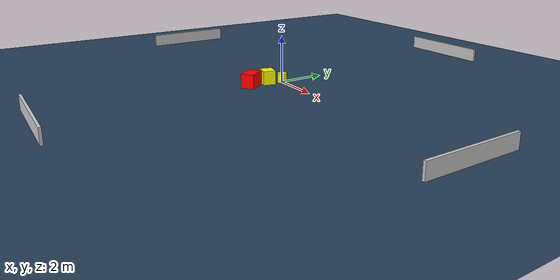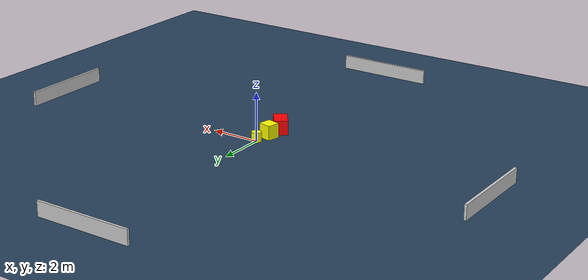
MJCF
<?xml version="1.0" ?>
<mujoco model="generated_environment">
  <option timestep="0.01" integrator="RK4" cone="elliptic"/>
  <default>
    <geom density="1"/>
  </default>
  <asset>
    <texture builtin="gradient" height="3072" name="skybox" rgb1="0.3 0.5 0.7" rgb2="0 0 0" type="skybox" width="512"/>
    <texture builtin="checker" height="300" name="groundplane" rgb1="0.2 0.3 0.4" rgb2="0.1 0.2 0.3" type="2d" width="300"/>
    <material name="groundplane" reflectance="0.2" texrepeat="5 5" texture="groundplane"/>
  </asset>
  <worldbody>
    <light dir="0 0 -1" directional="true" pos="0 0 1.5"/>
    <geom condim="3" friction="0.5 0.005 0.001" material="groundplane" name="floor" pos="0 0 0" size="0 0 0.05" type="plane"/>
    <body name="walls">
      <geom name="wall_1" condim="4" pos="-10.0 0.0 0.3" rgba="0.800000011920929 0.800000011920929 0.800000011920929 1.0" size="0.05 2.0 0.3" type="box"/>
      <geom name="wall_2" condim="4" pos="10.0 0.0 0.3" rgba="0.800000011920929 0.800000011920929 0.800000011920929 1.0" size="0.05 2.0 0.3" type="box"/>
      <geom name="wall_3" condim="4" pos="0.0 -10.0 0.3" rgba="0.800000011920929 0.800000011920929 0.800000011920929 1.0" size="2.0 0.05 0.3" type="box"/>
      <geom name="wall_4" condim="4" pos="0.0 10.0 0.3" rgba="0.800000011920929 0.800000011920929 0.800000011920929 1.0" size="2.0 0.05 0.3" type="box"/>
    </body>
    <body name="robot">
      <joint name="joint_x" type="slide" pos="0 0 0" axis="1 0 0"/>
      <joint name="joint_y" type="slide" pos="0 0 0" axis="0 1 0"/>
      <geom name="robot" type="cylinder" pos="0.0 0.0 0.2" size="0.2 0.2 0.0" mass="5.0" friction="1.0 0.005 0.0001" condim="4" rgba="1.0 1.0 0.0 1.0"/>
    </body>
    <body name="obstacle_1_movable">
      <geom name="obstacle_1_movable" condim="4" pos="-0.16559136943735797 -0.6261547657515519 0.3" euler="0 0 346.5166874239357" friction="0.0 0.005 0.001" rgba="1.0 1.0 0.0 1.0" size="0.2713604172331421 0.2658099115983757 0.3" type="box" mass="0.1"/>
      <joint type="free"/>
    </body>
    <body name="obstacle_2_static">
      <geom name="obstacle_2_static" condim="4" pos="-0.16668266031101267 -1.4220211489644814 0.3" euler="0 0 36.30534693795939" friction="0.0 0.005 0.001" rgba="1.0 0.0 0.0 1.0" size="0.28182864675606767 0.4179692692222366 0.3" type="box"/>
    </body>
  </worldbody>
  <actuator>
    <motor name="actuator_x" joint="joint_x" gear="1" ctrlrange="-1 1"/>
    <motor name="actuator_y" joint="joint_y" gear="1" ctrlrange="-1 1"/>
  </actuator>
</mujoco>
